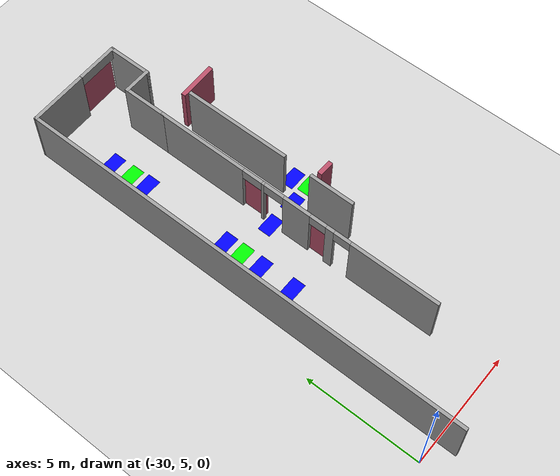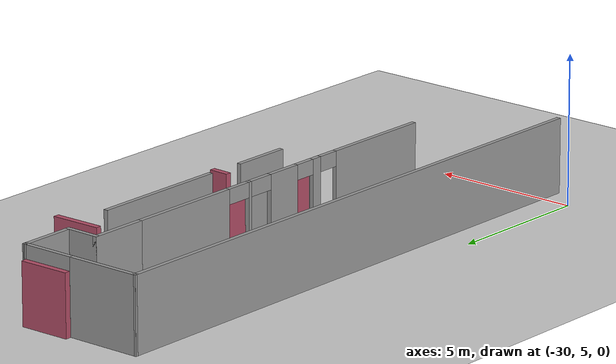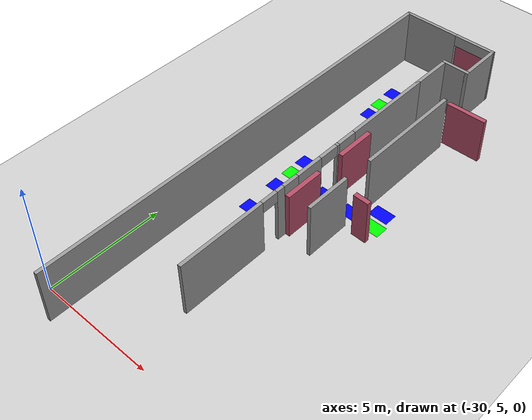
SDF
<sdf version="1.6">
 <world name="default">
  <model name="ground_plane">
   <pose>0 0 0.001 0 -0 0</pose>
   <static>1</static>
   <link name="link">
    <collision name="collision">
     <geometry><plane><normal>0 0 1</normal><size>100 100</size></plane></geometry>
     <surface><friction><ode><mu>100</mu><mu2>50</mu2></ode></friction></surface>
    </collision>
    <visual name="visual">
     <cast_shadows>0</cast_shadows>
     <geometry><plane><normal>0 0 1</normal><size>100 100</size></plane></geometry>
     <material>
      <script><uri>file://media/materials/scripts/gazebo.material</uri><name>Gazebo/Grey</name></script>
     </material>
    </visual>
   </link>
  </model>
  <model name="fin_se1f1.sdf">
   <pose>1.8125 -2.2901 0 0 -0 0</pose>
   <link name="Wall_0">
    <collision name="Wall_0_Collision">
     <geometry><box><size>20 0.15 2.5</size></box></geometry>
     <pose>0 0 1.25 0 -0 0</pose>
    </collision>
    <visual name="Wall_0_Visual">
     <pose>0 0 1.25 0 -0 0</pose>
     <geometry><box><size>20 0.15 2.5</size></box></geometry>
     <material>
      <script><uri>file://media/materials/scripts/gazebo.material</uri><name>Gazebo/Grey</name></script>
      <ambient>1 1 1 1</ambient>
     </material>
     <meta><layer>0</layer></meta>
    </visual>
    <pose>-30.7496 16.4496 0 0 0 -1.5708</pose>
   </link>
   <link name="Wall_114">
    <collision name="Wall_114_Collision">
     <geometry><box><size>2 0.15 2.5</size></box></geometry>
     <pose>0 0 1.25 0 -0 0</pose>
    </collision>
    <visual name="Wall_114_Visual">
     <pose>0 0 1.25 0 -0 0</pose>
     <geometry><box><size>2 0.15 2.5</size></box></geometry>
     <material>
      <script><uri>file://media/materials/scripts/gazebo.material</uri><name>Gazebo/Grey</name></script>
      <ambient>1 1 1 1</ambient>
     </material>
     <meta><layer>0</layer></meta>
    </visual>
    <pose>-26.1645 15.6146 0 0 -0 1.5708</pose>
   </link>
   <link name="Wall_23">
    <collision name="Wall_23_Collision">
     <geometry><box><size>2 0.15 2.5</size></box></geometry>
     <pose>0 0 1.25 0 -0 0</pose>
    </collision>
    <visual name="Wall_23_Visual">
     <pose>0 0 1.25 0 -0 0</pose>
     <geometry><box><size>2 0.15 2.5</size></box></geometry>
     <material>
      <script><uri>file://media/materials/scripts/gazebo.material</uri><name>Gazebo/Grey</name></script>
      <ambient>1 1 1 1</ambient>
     </material>
     <meta><layer>0</layer></meta>
    </visual>
    <pose>-27.5496 23.6496 0 0 -0 1.5708</pose>
   </link>
   <link name="Wall_24">
    <collision name="Wall_24_Collision">
     <geometry><box><size>1.25 0.15 2.5</size></box></geometry>
     <pose>0 0 1.25 0 -0 0</pose>
    </collision>
    <visual name="Wall_24_Visual">
     <pose>0 0 1.25 0 -0 0</pose>
     <geometry><box><size>1.25 0.15 2.5</size></box></geometry>
     <material>
      <script><uri>file://media/materials/scripts/gazebo.material</uri><name>Gazebo/Grey</name></script>
      <ambient>1 1 1 1</ambient>
     </material>
     <meta><layer>0</layer></meta>
    </visual>
    <pose>-26.9996 24.5746 0.001 0 -0 0</pose>
   </link>
   <link name="Wall_25">
    <collision name="Wall_25_Collision">
     <geometry><box><size>2 0.15 2.5</size></box></geometry>
     <pose>0 0 1.25 0 -0 0</pose>
    </collision>
    <visual name="Wall_25_Visual">
     <pose>0 0 1.25 0 -0 0</pose>
     <geometry><box><size>2 0.15 2.5</size></box></geometry>
     <material>
      <script><uri>file://media/materials/scripts/gazebo.material</uri><name>Gazebo/Grey</name></script>
      <ambient>1 1 1 1</ambient>
     </material>
     <meta><layer>0</layer></meta>
    </visual>
    <pose>-26.4496 25.4996 0 0 -0 1.5708</pose>
   </link>
   <link name="Wall_27">
    <pose>-28.5996 26.3996 0 0 0 -3.12996</pose>
    <visual name="Wall_27_Visual_0">
     <pose>-2.20066 0 1.25 0 -0 0</pose>
     <geometry><box><size>0.048973 0.15 2.5</size></box></geometry>
     <material>
      <script><uri>file://media/materials/scripts/gazebo.material</uri><name>Gazebo/Grey</name></script>
      <ambient>1 1 1 1</ambient>
     </material>
     <meta><layer>0</layer></meta>
    </visual>
    <collision name="Wall_27_Collision_0">
     <geometry><box><size>0.048973 0.15 2.5</size></box></geometry>
     <pose>-2.20066 0 1.25 0 -0 0</pose>
    </collision>
    <visual name="Wall_27_Visual_1">
     <pose>0.939694 0 1.25 0 -0 0</pose>
     <geometry><box><size>2.5709 0.15 2.5</size></box></geometry>
     <material>
      <script><uri>file://media/materials/scripts/gazebo.material</uri><name>Gazebo/Grey</name></script>
      <ambient>1 1 1 1</ambient>
     </material>
     <meta><layer>0</layer></meta>
    </visual>
    <collision name="Wall_27_Collision_1">
     <geometry><box><size>2.5709 0.15 2.5</size></box></geometry>
     <pose>0.939694 0 1.25 0 -0 0</pose>
    </collision>
    <visual name="Wall_27_Visual_2">
     <pose>-1.26096 0 2.25 0 -0 0</pose>
     <geometry><box><size>1.83041 0.15 0.5</size></box></geometry>
     <material>
      <script><uri>file://media/materials/scripts/gazebo.material</uri><name>Gazebo/Grey</name></script>
      <ambient>1 1 1 1</ambient>
     </material>
     <meta><layer>0</layer></meta>
    </visual>
    <collision name="Wall_27_Collision_2">
     <geometry><box><size>1.83041 0.15 0.5</size></box></geometry>
     <pose>-1.26096 0 2.25 0 -0 0</pose>
    </collision>
   </link>
   <link name="Wall_29">
    <pose>-27.5496 16.2996 0 0 0 -1.5708</pose>
    <visual name="Wall_29_Visual_0">
     <pose>-4.45394 0 1.25 0 -0 0</pose>
     <geometry><box><size>4.09211 0.15 2.5</size></box></geometry>
     <material>
      <script><uri>file://media/materials/scripts/gazebo.material</uri><name>Gazebo/Grey</name></script>
      <ambient>1 1 1 1</ambient>
     </material>
     <meta><layer>0</layer></meta>
    </visual>
    <collision name="Wall_29_Collision_0">
     <geometry><box><size>4.09211 0.15 2.5</size></box></geometry>
     <pose>-4.45394 0 1.25 0 -0 0</pose>
    </collision>
    <visual name="Wall_29_Visual_1">
     <pose>-1.44499 0 1.25 0 -0 0</pose>
     <geometry><box><size>0.125793 0.15 2.5</size></box></geometry>
     <material>
      <script><uri>file://media/materials/scripts/gazebo.material</uri><name>Gazebo/Grey</name></script>
      <ambient>1 1 1 1</ambient>
     </material>
     <meta><layer>0</layer></meta>
    </visual>
    <collision name="Wall_29_Collision_1">
     <geometry><box><size>0.125793 0.15 2.5</size></box></geometry>
     <pose>-1.44499 0 1.25 0 -0 0</pose>
    </collision>
    <visual name="Wall_29_Visual_2">
     <pose>0.143983 0 1.25 0 -0 0</pose>
     <geometry><box><size>1.25215 0.15 2.5</size></box></geometry>
     <material>
      <script><uri>file://media/materials/scripts/gazebo.material</uri><name>Gazebo/Grey</name></script>
      <ambient>1 1 1 1</ambient>
     </material>
     <meta><layer>0</layer></meta>
    </visual>
    <collision name="Wall_29_Collision_2">
     <geometry><box><size>1.25215 0.15 2.5</size></box></geometry>
     <pose>0.143983 0 1.25 0 -0 0</pose>
    </collision>
    <visual name="Wall_29_Visual_3">
     <pose>1.69273 0 1.25 0 -0 0</pose>
     <geometry><box><size>0.367155 0.15 2.5</size></box></geometry>
     <material>
      <script><uri>file://media/materials/scripts/gazebo.material</uri><name>Gazebo/Grey</name></script>
      <ambient>1 1 1 1</ambient>
     </material>
     <meta><layer>0</layer></meta>
    </visual>
    <collision name="Wall_29_Collision_3">
     <geometry><box><size>0.367155 0.15 2.5</size></box></geometry>
     <pose>1.69273 0 1.25 0 -0 0</pose>
    </collision>
    <visual name="Wall_29_Visual_4">
     <pose>4.5577 0 1.25 0 -0 0</pose>
     <geometry><box><size>3.8846 0.15 2.5</size></box></geometry>
     <material>
      <script><uri>file://media/materials/scripts/gazebo.material</uri><name>Gazebo/Grey</name></script>
      <ambient>1 1 1 1</ambient>
     </material>
     <meta><layer>0</layer></meta>
    </visual>
    <collision name="Wall_29_Collision_4">
     <geometry><box><size>3.8846 0.15 2.5</size></box></geometry>
     <pose>4.5577 0 1.25 0 -0 0</pose>
    </collision>
    <visual name="Wall_29_Visual_5">
     <pose>-1.95789 0 2.25 0 -0 0</pose>
     <geometry><box><size>0.9 0.15 0.5</size></box></geometry>
     <material>
      <script><uri>file://media/materials/scripts/gazebo.material</uri><name>Gazebo/Grey</name></script>
      <ambient>1 1 1 1</ambient>
     </material>
     <meta><layer>0</layer></meta>
    </visual>
    <collision name="Wall_29_Collision_5">
     <geometry><box><size>0.9 0.15 0.5</size></box></geometry>
     <pose>-1.95789 0 2.25 0 -0 0</pose>
    </collision>
    <visual name="Wall_29_Visual_6">
     <pose>-0.932093 0 2.25 0 -0 0</pose>
     <geometry><box><size>0.9 0.15 0.5</size></box></geometry>
     <material>
      <script><uri>file://media/materials/scripts/gazebo.material</uri><name>Gazebo/Grey</name></script>
      <ambient>1 1 1 1</ambient>
     </material>
     <meta><layer>0</layer></meta>
    </visual>
    <collision name="Wall_29_Collision_6">
     <geometry><box><size>0.9 0.15 0.5</size></box></geometry>
     <pose>-0.932093 0 2.25 0 -0 0</pose>
    </collision>
    <visual name="Wall_29_Visual_7">
     <pose>1.1396 0 2.25 0 -0 0</pose>
     <geometry><box><size>0.739091 0.15 0.5</size></box></geometry>
     <material>
      <script><uri>file://media/materials/scripts/gazebo.material</uri><name>Gazebo/Grey</name></script>
      <ambient>1 1 1 1</ambient>
     </material>
     <meta><layer>0</layer></meta>
    </visual>
    <collision name="Wall_29_Collision_7">
     <geometry><box><size>0.739091 0.15 0.5</size></box></geometry>
     <pose>1.1396 0 2.25 0 -0 0</pose>
    </collision>
    <visual name="Wall_29_Visual_8">
     <pose>2.24585 0 2.25 0 -0 0</pose>
     <geometry><box><size>0.739091 0.15 0.5</size></box></geometry>
     <material>
      <script><uri>file://media/materials/scripts/gazebo.material</uri><name>Gazebo/Grey</name></script>
      <ambient>1 1 1 1</ambient>
     </material>
     <meta><layer>0</layer></meta>
    </visual>
    <collision name="Wall_29_Collision_8">
     <geometry><box><size>0.739091 0.15 0.5</size></box></geometry>
     <pose>2.24585 0 2.25 0 -0 0</pose>
    </collision>
   </link>
   <link name="Wall_67">
    <collision name="Wall_67_Collision">
     <geometry><box><size>4.75 0.15 2.5</size></box></geometry>
     <pose>0 0 1.25 0 -0 0</pose>
    </collision>
    <visual name="Wall_67_Visual">
     <pose>0 0 1.25 0 -0 0</pose>
     <geometry><box><size>4.75 0.15 2.5</size></box></geometry>
     <material>
      <script><uri>file://media/materials/scripts/gazebo.material</uri><name>Gazebo/Grey</name></script>
      <ambient>1 1 1 1</ambient>
     </material>
     <meta><layer>0</layer></meta>
    </visual>
    <pose>-26.1152 20.2344 0 0 0 -1.5708</pose>
   </link>
   <static>1</static>
  </model>
  <model name="doorOutside">
   <link name="link">
    <pose>0.155539 -0.366282 0.216958 0 -0 0</pose>
    <inertial>
     <mass>2.13199</mass>
     <inertia>
      <ixx>0.452656</ixx>
      <ixy>0</ixy>
      <ixz>0</ixz>
      <iyy>0.796738</iyy>
      <iyz>0</iyz>
      <izz>0.699414</izz>
     </inertia>
     <pose>0 0 0.001 0 -0 0</pose>
    </inertial>
    <visual name="visual">
     <geometry><box><size>1.71368 0.198843 2.05986</size></box></geometry>
     <material>
      <script><name>Gazebo/Grey</name><uri>file://media/materials/scripts/gazebo.material</uri></script>
      <ambient>0.7 0.3 0.4 1</ambient>
      <diffuse>0.7 0.7 0.7 1</diffuse>
      <specular>0.01 0.01 0.01 1</specular>
      <emissive>0 0 0 1</emissive>
      <shader type="vertex"><normal_map>__default__</normal_map></shader>
      <lighting>0</lighting>
     </material>
     <pose>0 0 0.001 0 -0 0</pose>
    </visual>
    <collision name="collision">
     <pose>0 0 0.001 0 -0 0</pose>
     <geometry><box><size>1.71368 0.198843 2.05986</size></box></geometry>
     <surface>
      <friction>
       <ode><mu>1</mu><mu2>1</mu2><fdir1>0 0 0</fdir1><slip1>0</slip1><slip2>0</slip2></ode>
       <torsional>
        <coefficient>1</coefficient>
        <patch_radius>0</patch_radius>
        <surface_radius>0</surface_radius>
        <use_patch_radius>1</use_patch_radius>
        <ode><slip>0</slip></ode>
       </torsional>
      </friction>
      <bounce><restitution_coefficient>0</restitution_coefficient><threshold>1e+06</threshold></bounce>
      <contact>
       <collide_without_contact>0</collide_without_contact>
       <collide_without_contact_bitmask>1</collide_without_contact_bitmask>
       <collide_bitmask>1</collide_bitmask>
       <ode>
        <soft_cfm>0</soft_cfm>
        <soft_erp>0.2</soft_erp>
        <kp>1e+13</kp>
        <kd>1</kd>
        <max_vel>0.01</max_vel>
        <min_depth>0</min_depth>
       </ode>
       <bullet>
        <split_impulse>1</split_impulse>
        <split_impulse_penetration_threshold>-0.01</split_impulse_penetration_threshold>
        <soft_cfm>0</soft_cfm>
        <soft_erp>0.2</soft_erp>
        <kp>1e+13</kp>
        <kd>1</kd>
       </bullet>
      </contact>
     </surface>
    </collision>
   </link>
   <static>1</static>
   <pose>-25.7598 24.6794 0.812972 0 -0 0.023128</pose>
  </model>
  <model name="doorOutside_clone">
   <link name="link">
    <pose>0.155539 -0.366282 0.216958 0 -0 0</pose>
    <inertial>
     <mass>2.13199</mass>
     <inertia>
      <ixx>0.452656</ixx>
      <ixy>0</ixy>
      <ixz>0</ixz>
      <iyy>0.796738</iyy>
      <iyz>0</iyz>
      <izz>0.699414</izz>
     </inertia>
     <pose>0 0 0.001 0 -0 0</pose>
    </inertial>
    <visual name="visual">
     <geometry><box><size>1.71368 0.198843 2.05986</size></box></geometry>
     <material>
      <script><name>Gazebo/Grey</name><uri>file://media/materials/scripts/gazebo.material</uri></script>
      <ambient>0.7 0.3 0.4 1</ambient>
      <diffuse>0.7 0.7 0.7 1</diffuse>
      <specular>0.01 0.01 0.01 1</specular>
      <emissive>0 0 0 1</emissive>
      <shader type="vertex"><normal_map>__default__</normal_map></shader>
      <lighting>0</lighting>
     </material>
     <pose>0 0 0.001 0 -0 0</pose>
    </visual>
    <collision name="collision">
     <pose>0 0 0.001 0 -0 0</pose>
     <geometry><box><size>1.71368 0.198843 2.05986</size></box></geometry>
     <surface>
      <friction>
       <ode><mu>1</mu><mu2>1</mu2><fdir1>0 0 0</fdir1><slip1>0</slip1><slip2>0</slip2></ode>
       <torsional>
        <coefficient>1</coefficient>
        <patch_radius>0</patch_radius>
        <surface_radius>0</surface_radius>
        <use_patch_radius>1</use_patch_radius>
        <ode><slip>0</slip></ode>
       </torsional>
      </friction>
      <bounce><restitution_coefficient>0</restitution_coefficient><threshold>1e+06</threshold></bounce>
      <contact>
       <collide_without_contact>0</collide_without_contact>
       <collide_without_contact_bitmask>1</collide_without_contact_bitmask>
       <collide_bitmask>1</collide_bitmask>
       <ode>
        <soft_cfm>0</soft_cfm>
        <soft_erp>0.2</soft_erp>
        <kp>1e+13</kp>
        <kd>1</kd>
        <max_vel>0.01</max_vel>
        <min_depth>0</min_depth>
       </ode>
       <bullet>
        <split_impulse>1</split_impulse>
        <split_impulse_penetration_threshold>-0.01</split_impulse_penetration_threshold>
        <soft_cfm>0</soft_cfm>
        <soft_erp>0.2</soft_erp>
        <kp>1e+13</kp>
        <kd>1</kd>
       </bullet>
      </contact>
     </surface>
    </collision>
   </link>
   <static>1</static>
   <pose>-23.6444 21.0534 0.812972 0 -0 0.023097</pose>
  </model>
  <model name="intersection_3">
   <link name="link">
    <pose>0 0 0.001 0 -0 0</pose>
    <inertial>
     <mass>0.0352517</mass>
     <inertia>
      <ixx>0.000997067</ixx>
      <ixy>0</ixy>
      <ixz>0</ixz>
      <iyy>0.00220147</iyy>
      <iyz>0</iyz>
      <izz>0.0031692</izz>
     </inertia>
     <pose>0 0 0.001 0 -0 0</pose>
    </inertial>
    <visual name="visual">
     <geometry><box><size>0.862743 0.578289 1e-06</size></box></geometry>
     <material>
      <script><name>Gazebo/Grey</name><uri>file://media/materials/scripts/gazebo.material</uri></script>
      <ambient>0 0 1 1</ambient>
      <diffuse>0 0 1 1</diffuse>
      <specular>0 0 1 1</specular>
      <emissive>0 0 1 1</emissive>
      <shader type="vertex"><normal_map>__default__</normal_map></shader>
     </material>
     <pose>0 0 0.001 0 -0 0</pose>
    </visual>
    <collision name="collision">
     <pose>0 0 0.001 0 -0 0</pose>
     <geometry><box><size>0.862743 0.578289 0.000477</size></box></geometry>
     <surface>
      <friction>
       <ode><mu>1</mu><mu2>1</mu2><fdir1>0 0 0</fdir1><slip1>0</slip1><slip2>0</slip2></ode>
       <torsional>
        <coefficient>1</coefficient>
        <patch_radius>0</patch_radius>
        <surface_radius>0</surface_radius>
        <use_patch_radius>1</use_patch_radius>
        <ode><slip>0</slip></ode>
       </torsional>
      </friction>
      <bounce><restitution_coefficient>0</restitution_coefficient><threshold>1e+06</threshold></bounce>
      <contact>
       <collide_without_contact>0</collide_without_contact>
       <collide_without_contact_bitmask>1</collide_without_contact_bitmask>
       <collide_bitmask>1</collide_bitmask>
       <ode>
        <soft_cfm>0</soft_cfm>
        <soft_erp>0.2</soft_erp>
        <kp>1e+13</kp>
        <kd>1</kd>
        <max_vel>0.01</max_vel>
        <min_depth>0</min_depth>
       </ode>
       <bullet>
        <split_impulse>1</split_impulse>
        <split_impulse_penetration_threshold>-0.01</split_impulse_penetration_threshold>
        <soft_cfm>0</soft_cfm>
        <soft_erp>0.2</soft_erp>
        <kp>1e+13</kp>
        <kd>1</kd>
       </bullet>
      </contact>
     </surface>
    </collision>
   </link>
   <static>1</static>
   <pose>-23.599 15.7 0 0 -0 0</pose>
  </model>
  <model name="doorOutside_2">
   <link name="link">
    <pose>0.155539 -0.366282 0.216958 0 -0 0</pose>
    <inertial>
     <mass>2.13199</mass>
     <inertia>
      <ixx>0.452656</ixx>
      <ixy>0</ixy>
      <ixz>0</ixz>
      <iyy>0.796738</iyy>
      <iyz>0</iyz>
      <izz>0.699414</izz>
     </inertia>
     <pose>0 0 0.001 0 -0 0</pose>
    </inertial>
    <visual name="visual">
     <geometry><box><size>1.71368 0.198843 2.05986</size></box></geometry>
     <material>
      <script><name>Gazebo/Grey</name><uri>file://media/materials/scripts/gazebo.material</uri></script>
      <ambient>0.7 0.3 0.4 1</ambient>
      <diffuse>0.7 0.7 0.7 1</diffuse>
      <specular>0.01 0.01 0.01 1</specular>
      <emissive>0 0 0 1</emissive>
      <shader type="vertex"><normal_map>__default__</normal_map></shader>
      <lighting>0</lighting>
     </material>
     <pose>0 0 0.001 0 -0 0</pose>
    </visual>
    <collision name="collision">
     <pose>0 0 0.001 0 -0 0</pose>
     <geometry><box><size>1.71368 0.198843 2.05986</size></box></geometry>
     <surface>
      <friction>
       <ode><mu>1</mu><mu2>1</mu2><fdir1>0 0 0</fdir1><slip1>0</slip1><slip2>0</slip2></ode>
       <torsional>
        <coefficient>1</coefficient>
        <patch_radius>0</patch_radius>
        <surface_radius>0</surface_radius>
        <use_patch_radius>1</use_patch_radius>
        <ode><slip>0</slip></ode>
       </torsional>
      </friction>
      <bounce><restitution_coefficient>0</restitution_coefficient><threshold>1e+06</threshold></bounce>
      <contact>
       <collide_without_contact>0</collide_without_contact>
       <collide_without_contact_bitmask>1</collide_without_contact_bitmask>
       <collide_bitmask>1</collide_bitmask>
       <ode>
        <soft_cfm>0</soft_cfm>
        <soft_erp>0.2</soft_erp>
        <kp>1e+13</kp>
        <kd>1</kd>
        <max_vel>0.01</max_vel>
        <min_depth>0</min_depth>
       </ode>
       <bullet>
        <split_impulse>1</split_impulse>
        <split_impulse_penetration_threshold>-0.01</split_impulse_penetration_threshold>
        <soft_cfm>0</soft_cfm>
        <soft_erp>0.2</soft_erp>
        <kp>1e+13</kp>
        <kd>1</kd>
       </bullet>
      </contact>
     </surface>
    </collision>
   </link>
   <static>0</static>
   <pose>-25.9288 16.1601 0.811972 0 -0 1.5708</pose>
  </model>
  <model name="doorOutside_2_clone">
   <link name="link">
    <pose>0.155539 -0.366282 0.216958 0 -0 0</pose>
    <inertial>
     <mass>2.13199</mass>
     <inertia>
      <ixx>0.452656</ixx>
      <ixy>0</ixy>
      <ixz>0</ixz>
      <iyy>0.796738</iyy>
      <iyz>0</iyz>
      <izz>0.699414</izz>
     </inertia>
     <pose>0 0 0.001 0 -0 0</pose>
    </inertial>
    <visual name="visual">
     <geometry><box><size>1.71368 0.198843 2.05986</size></box></geometry>
     <material>
      <script><name>Gazebo/Grey</name><uri>file://media/materials/scripts/gazebo.material</uri></script>
      <ambient>0.7 0.3 0.4 1</ambient>
      <diffuse>0.7 0.7 0.7 1</diffuse>
      <specular>0.01 0.01 0.01 1</specular>
      <emissive>0 0 0 1</emissive>
      <shader type="vertex"><normal_map>__default__</normal_map></shader>
      <lighting>0</lighting>
     </material>
     <pose>0 0 0.001 0 -0 0</pose>
    </visual>
    <collision name="collision">
     <pose>0 0 0.001 0 -0 0</pose>
     <geometry><box><size>1.71368 0.198843 2.05986</size></box></geometry>
     <surface>
      <friction>
       <ode><mu>1</mu><mu2>1</mu2><fdir1>0 0 0</fdir1><slip1>0</slip1><slip2>0</slip2></ode>
       <torsional>
        <coefficient>1</coefficient>
        <patch_radius>0</patch_radius>
        <surface_radius>0</surface_radius>
        <use_patch_radius>1</use_patch_radius>
        <ode><slip>0</slip></ode>
       </torsional>
      </friction>
      <bounce><restitution_coefficient>0</restitution_coefficient><threshold>1e+06</threshold></bounce>
      <contact>
       <collide_without_contact>0</collide_without_contact>
       <collide_without_contact_bitmask>1</collide_without_contact_bitmask>
       <collide_bitmask>1</collide_bitmask>
       <ode>
        <soft_cfm>0</soft_cfm>
        <soft_erp>0.2</soft_erp>
        <kp>1e+13</kp>
        <kd>1</kd>
        <max_vel>0.01</max_vel>
        <min_depth>0</min_depth>
       </ode>
       <bullet>
        <split_impulse>1</split_impulse>
        <split_impulse_penetration_threshold>-0.01</split_impulse_penetration_threshold>
        <soft_cfm>0</soft_cfm>
        <soft_erp>0.2</soft_erp>
        <kp>1e+13</kp>
        <kd>1</kd>
       </bullet>
      </contact>
     </surface>
    </collision>
   </link>
   <static>0</static>
   <pose>-25.9267 13.2237 0.811972 0 -0 1.56757</pose>
  </model>
  <model name="corridor">
   <link name="link">
    <pose>0 0 0.001 0 -0 0</pose>
    <inertial>
     <mass>0.0352517</mass>
     <inertia>
      <ixx>0.00099707</ixx>
      <ixy>0</ixy>
      <ixz>0</ixz>
      <iyy>0.00220147</iyy>
      <iyz>0</iyz>
      <izz>0.0031692</izz>
     </inertia>
     <pose>0 0 0.001 0 -0 0</pose>
    </inertial>
    <visual name="visual">
     <geometry><box><size>0.862743 0.578289 1e-06</size></box></geometry>
     <material>
      <script><name>Gazebo/Grey</name><uri>file://media/materials/scripts/gazebo.material</uri></script>
      <ambient>0 1 0 1</ambient>
      <diffuse>0 1 0 1</diffuse>
      <specular>0 1 0 1</specular>
      <emissive>0 1 0 1</emissive>
      <shader type="vertex"><normal_map>__default__</normal_map></shader>
     </material>
     <pose>0 0 0.001 0 -0 0</pose>
    </visual>
    <collision name="collision">
     <pose>0 0 0.001 0 -0 0</pose>
     <geometry><box><size>0.862743 0.578289 0.000477</size></box></geometry>
     <surface>
      <friction>
       <ode><mu>1</mu><mu2>1</mu2><fdir1>0 0 0</fdir1><slip1>0</slip1><slip2>0</slip2></ode>
       <torsional>
        <coefficient>1</coefficient>
        <patch_radius>0</patch_radius>
        <surface_radius>0</surface_radius>
        <use_patch_radius>1</use_patch_radius>
        <ode><slip>0</slip></ode>
       </torsional>
      </friction>
      <bounce><restitution_coefficient>0</restitution_coefficient><threshold>1e+06</threshold></bounce>
      <contact>
       <collide_without_contact>0</collide_without_contact>
       <collide_without_contact_bitmask>1</collide_without_contact_bitmask>
       <collide_bitmask>1</collide_bitmask>
       <ode>
        <soft_cfm>0</soft_cfm>
        <soft_erp>0.2</soft_erp>
        <kp>1e+13</kp>
        <kd>1</kd>
        <max_vel>0.01</max_vel>
        <min_depth>0</min_depth>
       </ode>
       <bullet>
        <split_impulse>1</split_impulse>
        <split_impulse_penetration_threshold>-0.01</split_impulse_penetration_threshold>
        <soft_cfm>0</soft_cfm>
        <soft_erp>0.2</soft_erp>
        <kp>1e+13</kp>
        <kd>1</kd>
       </bullet>
      </contact>
     </surface>
    </collision>
   </link>
   <static>1</static>
   <pose>-27.5631 20.7542 0 0 -0 0</pose>
  </model>
  <model name="corridor_0">
   <link name="link">
    <pose>0 0 0.001 0 -0 0</pose>
    <inertial>
     <mass>0.0352517</mass>
     <inertia>
      <ixx>0.00099707</ixx>
      <ixy>0</ixy>
      <ixz>0</ixz>
      <iyy>0.00220147</iyy>
      <iyz>0</iyz>
      <izz>0.0031692</izz>
     </inertia>
     <pose>0 0 0.001 0 -0 0</pose>
    </inertial>
    <visual name="visual">
     <geometry><box><size>0.862743 0.578289 1e-06</size></box></geometry>
     <material>
      <script><name>Gazebo/Grey</name><uri>file://media/materials/scripts/gazebo.material</uri></script>
      <ambient>0 1 0 1</ambient>
      <diffuse>0 1 0 1</diffuse>
      <specular>0 1 0 1</specular>
      <emissive>0 1 0 1</emissive>
      <shader type="vertex"><normal_map>__default__</normal_map></shader>
     </material>
     <pose>0 0 0.001 0 -0 0</pose>
    </visual>
    <collision name="collision">
     <pose>0 0 0.001 0 -0 0</pose>
     <geometry><box><size>0.862743 0.578289 0.000477</size></box></geometry>
     <surface>
      <friction>
       <ode><mu>1</mu><mu2>1</mu2><fdir1>0 0 0</fdir1><slip1>0</slip1><slip2>0</slip2></ode>
       <torsional>
        <coefficient>1</coefficient>
        <patch_radius>0</patch_radius>
        <surface_radius>0</surface_radius>
        <use_patch_radius>1</use_patch_radius>
        <ode><slip>0</slip></ode>
       </torsional>
      </friction>
      <bounce><restitution_coefficient>0</restitution_coefficient><threshold>1e+06</threshold></bounce>
      <contact>
       <collide_without_contact>0</collide_without_contact>
       <collide_without_contact_bitmask>1</collide_without_contact_bitmask>
       <collide_bitmask>1</collide_bitmask>
       <ode>
        <soft_cfm>0</soft_cfm>
        <soft_erp>0.2</soft_erp>
        <kp>1e+13</kp>
        <kd>1</kd>
        <max_vel>0.01</max_vel>
        <min_depth>0</min_depth>
       </ode>
       <bullet>
        <split_impulse>1</split_impulse>
        <split_impulse_penetration_threshold>-0.01</split_impulse_penetration_threshold>
        <soft_cfm>0</soft_cfm>
        <soft_erp>0.2</soft_erp>
        <kp>1e+13</kp>
        <kd>1</kd>
       </bullet>
      </contact>
     </surface>
    </collision>
   </link>
   <static>1</static>
   <pose>-27.5347 15.0677 0 0 -0 0</pose>
  </model>
  <model name="corridor_22">
   <link name="link">
    <pose>0 0 0.001 0 -0 0</pose>
    <inertial>
     <mass>0.0352517</mass>
     <inertia>
      <ixx>0.00099707</ixx>
      <ixy>0</ixy>
      <ixz>0</ixz>
      <iyy>0.00220147</iyy>
      <iyz>0</iyz>
      <izz>0.0031692</izz>
     </inertia>
     <pose>0 0 0.001 0 -0 0</pose>
    </inertial>
    <visual name="visual">
     <geometry><box><size>0.862743 0.578289 1e-06</size></box></geometry>
     <material>
      <script><name>Gazebo/Grey</name><uri>file://media/materials/scripts/gazebo.material</uri></script>
      <ambient>0 1 0 1</ambient>
      <diffuse>0 1 0 1</diffuse>
      <specular>0 1 0 1</specular>
      <emissive>0 1 0 1</emissive>
      <shader type="vertex"><normal_map>__default__</normal_map></shader>
     </material>
     <pose>0 0 0.001 0 -0 0</pose>
    </visual>
    <collision name="collision">
     <pose>0 0 0.001 0 -0 0</pose>
     <geometry><box><size>0.862743 0.578289 0.000477</size></box></geometry>
     <surface>
      <friction>
       <ode><mu>1</mu><mu2>1</mu2><fdir1>0 0 0</fdir1><slip1>0</slip1><slip2>0</slip2></ode>
       <torsional>
        <coefficient>1</coefficient>
        <patch_radius>0</patch_radius>
        <surface_radius>0</surface_radius>
        <use_patch_radius>1</use_patch_radius>
        <ode><slip>0</slip></ode>
       </torsional>
      </friction>
      <bounce><restitution_coefficient>0</restitution_coefficient><threshold>1e+06</threshold></bounce>
      <contact>
       <collide_without_contact>0</collide_without_contact>
       <collide_without_contact_bitmask>1</collide_without_contact_bitmask>
       <collide_bitmask>1</collide_bitmask>
       <ode>
        <soft_cfm>0</soft_cfm>
        <soft_erp>0.2</soft_erp>
        <kp>1e+13</kp>
        <kd>1</kd>
        <max_vel>0.01</max_vel>
        <min_depth>0</min_depth>
       </ode>
       <bullet>
        <split_impulse>1</split_impulse>
        <split_impulse_penetration_threshold>-0.01</split_impulse_penetration_threshold>
        <soft_cfm>0</soft_cfm>
        <soft_erp>0.2</soft_erp>
        <kp>1e+13</kp>
        <kd>1</kd>
       </bullet>
      </contact>
     </surface>
    </collision>
   </link>
   <static>1</static>
   <pose>-23.4504 14.9709 0 0 -0 0</pose>
  </model>
  <model name="doorInside_14">
   <link name="link">
    <pose>0.712274 -0.220649 0.216958 0 -0 0</pose>
    <inertial>
     <mass>0.840612</mass>
     <inertia>
      <ixx>0.178476</ixx>
      <ixy>0</ixy>
      <ixz>0</ixz>
      <iyy>0.140406</iyy>
      <iyz>0</iyz>
      <izz>0.102032</izz>
     </inertia>
     <pose>0 0 0.001 0 -0 0</pose>
    </inertial>
    <visual name="visual">
     <geometry><box><size>0.675678 0.198843 2.05986</size></box></geometry>
     <material>
      <script><name>Gazebo/Grey</name><uri>file://media/materials/scripts/gazebo.material</uri></script>
      <ambient>0.7 0.3 0.4 1</ambient>
      <diffuse>0.7 0.7 0.7 1</diffuse>
      <specular>0.01 0.01 0.01 1</specular>
      <emissive>1 0 0 1</emissive>
      <shader type="vertex"><normal_map>__default__</normal_map></shader>
      <lighting>0</lighting>
     </material>
     <pose>0 0 0.001 0 -0 0</pose>
    </visual>
    <collision name="collision">
     <pose>0 0 0.001 0 -0 0</pose>
     <geometry><box><size>0.675678 0.198843 2.05986</size></box></geometry>
     <surface>
      <friction>
       <ode><mu>1</mu><mu2>1</mu2><fdir1>0 0 0</fdir1><slip1>0</slip1><slip2>0</slip2></ode>
       <torsional>
        <coefficient>1</coefficient>
        <patch_radius>0</patch_radius>
        <surface_radius>0</surface_radius>
        <use_patch_radius>1</use_patch_radius>
        <ode><slip>0</slip></ode>
       </torsional>
      </friction>
      <bounce><restitution_coefficient>0</restitution_coefficient><threshold>1e+06</threshold></bounce>
      <contact>
       <collide_without_contact>0</collide_without_contact>
       <collide_without_contact_bitmask>1</collide_without_contact_bitmask>
       <collide_bitmask>1</collide_bitmask>
       <ode>
        <soft_cfm>0</soft_cfm>
        <soft_erp>0.2</soft_erp>
        <kp>1e+13</kp>
        <kd>1</kd>
        <max_vel>0.01</max_vel>
        <min_depth>0</min_depth>
       </ode>
       <bullet>
        <split_impulse>1</split_impulse>
        <split_impulse_penetration_threshold>-0.01</split_impulse_penetration_threshold>
        <soft_cfm>0</soft_cfm>
        <soft_erp>0.2</soft_erp>
        <kp>1e+13</kp>
        <kd>1</kd>
       </bullet>
      </contact>
     </surface>
    </collision>
   </link>
   <static>0</static>
   <pose>-24.2309 14.4945 0.814008 0.006412 -0 -0.021441</pose>
  </model>
  <model name="intersection_28">
   <link name="link">
    <pose>0 0 0.001 0 -0 0</pose>
    <inertial>
     <mass>0.0352517</mass>
     <inertia>
      <ixx>0.000997067</ixx>
      <ixy>0</ixy>
      <ixz>0</ixz>
      <iyy>0.00220147</iyy>
      <iyz>0</iyz>
      <izz>0.0031692</izz>
     </inertia>
     <pose>0 0 0.001 0 -0 0</pose>
    </inertial>
    <visual name="visual">
     <geometry><box><size>0.862743 0.578289 1e-06</size></box></geometry>
     <material>
      <script><name>Gazebo/Grey</name><uri>file://media/materials/scripts/gazebo.material</uri></script>
      <ambient>0 0 1 1</ambient>
      <diffuse>0 0 1 1</diffuse>
      <specular>0 0 1 1</specular>
      <emissive>0 0 1 1</emissive>
      <shader type="vertex"><normal_map>__default__</normal_map></shader>
     </material>
     <pose>0 0 0.001 0 -0 0</pose>
    </visual>
    <collision name="collision">
     <pose>0 0 0.001 0 -0 0</pose>
     <geometry><box><size>0.862743 0.578289 0.000477</size></box></geometry>
     <surface>
      <friction>
       <ode><mu>1</mu><mu2>1</mu2><fdir1>0 0 0</fdir1><slip1>0</slip1><slip2>0</slip2></ode>
       <torsional>
        <coefficient>1</coefficient>
        <patch_radius>0</patch_radius>
        <surface_radius>0</surface_radius>
        <use_patch_radius>1</use_patch_radius>
        <ode><slip>0</slip></ode>
       </torsional>
      </friction>
      <bounce><restitution_coefficient>0</restitution_coefficient><threshold>1e+06</threshold></bounce>
      <contact>
       <collide_without_contact>0</collide_without_contact>
       <collide_without_contact_bitmask>1</collide_without_contact_bitmask>
       <collide_bitmask>1</collide_bitmask>
       <ode>
        <soft_cfm>0</soft_cfm>
        <soft_erp>0.2</soft_erp>
        <kp>1e+13</kp>
        <kd>1</kd>
        <max_vel>0.01</max_vel>
        <min_depth>0</min_depth>
       </ode>
       <bullet>
        <split_impulse>1</split_impulse>
        <split_impulse_penetration_threshold>-0.01</split_impulse_penetration_threshold>
        <soft_cfm>0</soft_cfm>
        <soft_erp>0.2</soft_erp>
        <kp>1e+13</kp>
        <kd>1</kd>
       </bullet>
      </contact>
     </surface>
    </collision>
   </link>
   <static>1</static>
   <pose>-27.4942 12.6293 0 0 -0 0</pose>
  </model>
  <model name="intersection_29">
   <link name="link">
    <pose>0 0 0.001 0 -0 0</pose>
    <inertial>
     <mass>0.0352517</mass>
     <inertia>
      <ixx>0.000997067</ixx>
      <ixy>0</ixy>
      <ixz>0</ixz>
      <iyy>0.00220147</iyy>
      <iyz>0</iyz>
      <izz>0.0031692</izz>
     </inertia>
     <pose>0 0 0.001 0 -0 0</pose>
    </inertial>
    <visual name="visual">
     <geometry><box><size>0.862743 0.578289 1e-06</size></box></geometry>
     <material>
      <script><name>Gazebo/Grey</name><uri>file://media/materials/scripts/gazebo.material</uri></script>
      <ambient>0 0 1 1</ambient>
      <diffuse>0 0 1 1</diffuse>
      <specular>0 0 1 1</specular>
      <emissive>0 0 1 1</emissive>
      <shader type="vertex"><normal_map>__default__</normal_map></shader>
     </material>
     <pose>0 0 0.001 0 -0 0</pose>
    </visual>
    <collision name="collision">
     <pose>0 0 0.001 0 -0 0</pose>
     <geometry><box><size>0.862743 0.578289 0.000477</size></box></geometry>
     <surface>
      <friction>
       <ode><mu>1</mu><mu2>1</mu2><fdir1>0 0 0</fdir1><slip1>0</slip1><slip2>0</slip2></ode>
       <torsional>
        <coefficient>1</coefficient>
        <patch_radius>0</patch_radius>
        <surface_radius>0</surface_radius>
        <use_patch_radius>1</use_patch_radius>
        <ode><slip>0</slip></ode>
       </torsional>
      </friction>
      <bounce><restitution_coefficient>0</restitution_coefficient><threshold>1e+06</threshold></bounce>
      <contact>
       <collide_without_contact>0</collide_without_contact>
       <collide_without_contact_bitmask>1</collide_without_contact_bitmask>
       <collide_bitmask>1</collide_bitmask>
       <ode>
        <soft_cfm>0</soft_cfm>
        <soft_erp>0.2</soft_erp>
        <kp>1e+13</kp>
        <kd>1</kd>
        <max_vel>0.01</max_vel>
        <min_depth>0</min_depth>
       </ode>
       <bullet>
        <split_impulse>1</split_impulse>
        <split_impulse_penetration_threshold>-0.01</split_impulse_penetration_threshold>
        <soft_cfm>0</soft_cfm>
        <soft_erp>0.2</soft_erp>
        <kp>1e+13</kp>
        <kd>1</kd>
       </bullet>
      </contact>
     </surface>
    </collision>
   </link>
   <static>1</static>
   <pose>-27.5248 14.1529 0 0 -0 0</pose>
  </model>
  <model name="intersection_31">
   <link name="link">
    <pose>0 0 0.001 0 -0 0</pose>
    <inertial>
     <mass>0.0352517</mass>
     <inertia>
      <ixx>0.000997067</ixx>
      <ixy>0</ixy>
      <ixz>0</ixz>
      <iyy>0.00220147</iyy>
      <iyz>0</iyz>
      <izz>0.0031692</izz>
     </inertia>
     <pose>0 0 0.001 0 -0 0</pose>
    </inertial>
    <visual name="visual">
     <geometry><box><size>0.862743 0.578289 1e-06</size></box></geometry>
     <material>
      <script><name>Gazebo/Grey</name><uri>file://media/materials/scripts/gazebo.material</uri></script>
      <ambient>0 0 1 1</ambient>
      <diffuse>0 0 1 1</diffuse>
      <specular>0 0 1 1</specular>
      <emissive>0 0 1 1</emissive>
      <shader type="vertex"><normal_map>__default__</normal_map></shader>
     </material>
     <pose>0 0 0.001 0 -0 0</pose>
    </visual>
    <collision name="collision">
     <pose>0 0 0.001 0 -0 0</pose>
     <geometry><box><size>0.862743 0.578289 0.000477</size></box></geometry>
     <surface>
      <friction>
       <ode><mu>1</mu><mu2>1</mu2><fdir1>0 0 0</fdir1><slip1>0</slip1><slip2>0</slip2></ode>
       <torsional>
        <coefficient>1</coefficient>
        <patch_radius>0</patch_radius>
        <surface_radius>0</surface_radius>
        <use_patch_radius>1</use_patch_radius>
        <ode><slip>0</slip></ode>
       </torsional>
      </friction>
      <bounce><restitution_coefficient>0</restitution_coefficient><threshold>1e+06</threshold></bounce>
      <contact>
       <collide_without_contact>0</collide_without_contact>
       <collide_without_contact_bitmask>1</collide_without_contact_bitmask>
       <collide_bitmask>1</collide_bitmask>
       <ode>
        <soft_cfm>0</soft_cfm>
        <soft_erp>0.2</soft_erp>
        <kp>1e+13</kp>
        <kd>1</kd>
        <max_vel>0.01</max_vel>
        <min_depth>0</min_depth>
       </ode>
       <bullet>
        <split_impulse>1</split_impulse>
        <split_impulse_penetration_threshold>-0.01</split_impulse_penetration_threshold>
        <soft_cfm>0</soft_cfm>
        <soft_erp>0.2</soft_erp>
        <kp>1e+13</kp>
        <kd>1</kd>
       </bullet>
      </contact>
     </surface>
    </collision>
   </link>
   <static>1</static>
   <pose>-27.5499 15.8818 0 0 -0 0</pose>
  </model>
  <model name="intersection_32">
   <link name="link">
    <pose>0 0 0.001 0 -0 0</pose>
    <inertial>
     <mass>0.0352517</mass>
     <inertia>
      <ixx>0.000997067</ixx>
      <ixy>0</ixy>
      <ixz>0</ixz>
      <iyy>0.00220147</iyy>
      <iyz>0</iyz>
      <izz>0.0031692</izz>
     </inertia>
     <pose>0 0 0.001 0 -0 0</pose>
    </inertial>
    <visual name="visual">
     <geometry><box><size>0.862743 0.578289 1e-06</size></box></geometry>
     <material>
      <script><name>Gazebo/Grey</name><uri>file://media/materials/scripts/gazebo.material</uri></script>
      <ambient>0 0 1 1</ambient>
      <diffuse>0 0 1 1</diffuse>
      <specular>0 0 1 1</specular>
      <emissive>0 0 1 1</emissive>
      <shader type="vertex"><normal_map>__default__</normal_map></shader>
     </material>
     <pose>0 0 0.001 0 -0 0</pose>
    </visual>
    <collision name="collision">
     <pose>0 0 0.001 0 -0 0</pose>
     <geometry><box><size>0.862743 0.578289 0.000477</size></box></geometry>
     <surface>
      <friction>
       <ode><mu>1</mu><mu2>1</mu2><fdir1>0 0 0</fdir1><slip1>0</slip1><slip2>0</slip2></ode>
       <torsional>
        <coefficient>1</coefficient>
        <patch_radius>0</patch_radius>
        <surface_radius>0</surface_radius>
        <use_patch_radius>1</use_patch_radius>
        <ode><slip>0</slip></ode>
       </torsional>
      </friction>
      <bounce><restitution_coefficient>0</restitution_coefficient><threshold>1e+06</threshold></bounce>
      <contact>
       <collide_without_contact>0</collide_without_contact>
       <collide_without_contact_bitmask>1</collide_without_contact_bitmask>
       <collide_bitmask>1</collide_bitmask>
       <ode>
        <soft_cfm>0</soft_cfm>
        <soft_erp>0.2</soft_erp>
        <kp>1e+13</kp>
        <kd>1</kd>
        <max_vel>0.01</max_vel>
        <min_depth>0</min_depth>
       </ode>
       <bullet>
        <split_impulse>1</split_impulse>
        <split_impulse_penetration_threshold>-0.01</split_impulse_penetration_threshold>
        <soft_cfm>0</soft_cfm>
        <soft_erp>0.2</soft_erp>
        <kp>1e+13</kp>
        <kd>1</kd>
       </bullet>
      </contact>
     </surface>
    </collision>
   </link>
   <static>1</static>
   <pose>-27.5069 19.9595 0 0 -0 0</pose>
  </model>
  <model name="intersection_33">
   <link name="link">
    <pose>0 0 0.001 0 -0 0</pose>
    <inertial>
     <mass>0.0352517</mass>
     <inertia>
      <ixx>0.000997067</ixx>
      <ixy>0</ixy>
      <ixz>0</ixz>
      <iyy>0.00220147</iyy>
      <iyz>0</iyz>
      <izz>0.0031692</izz>
     </inertia>
     <pose>0 0 0.001 0 -0 0</pose>
    </inertial>
    <visual name="visual">
     <geometry><box><size>0.862743 0.578289 1e-06</size></box></geometry>
     <material>
      <script><name>Gazebo/Grey</name><uri>file://media/materials/scripts/gazebo.material</uri></script>
      <ambient>0 0 1 1</ambient>
      <diffuse>0 0 1 1</diffuse>
      <specular>0 0 1 1</specular>
      <emissive>0 0 1 1</emissive>
      <shader type="vertex"><normal_map>__default__</normal_map></shader>
     </material>
     <pose>0 0 0.001 0 -0 0</pose>
    </visual>
    <collision name="collision">
     <pose>0 0 0.001 0 -0 0</pose>
     <geometry><box><size>0.862743 0.578289 0.000477</size></box></geometry>
     <surface>
      <friction>
       <ode><mu>1</mu><mu2>1</mu2><fdir1>0 0 0</fdir1><slip1>0</slip1><slip2>0</slip2></ode>
       <torsional>
        <coefficient>1</coefficient>
        <patch_radius>0</patch_radius>
        <surface_radius>0</surface_radius>
        <use_patch_radius>1</use_patch_radius>
        <ode><slip>0</slip></ode>
       </torsional>
      </friction>
      <bounce><restitution_coefficient>0</restitution_coefficient><threshold>1e+06</threshold></bounce>
      <contact>
       <collide_without_contact>0</collide_without_contact>
       <collide_without_contact_bitmask>1</collide_without_contact_bitmask>
       <collide_bitmask>1</collide_bitmask>
       <ode>
        <soft_cfm>0</soft_cfm>
        <soft_erp>0.2</soft_erp>
        <kp>1e+13</kp>
        <kd>1</kd>
        <max_vel>0.01</max_vel>
        <min_depth>0</min_depth>
       </ode>
       <bullet>
        <split_impulse>1</split_impulse>
        <split_impulse_penetration_threshold>-0.01</split_impulse_penetration_threshold>
        <soft_cfm>0</soft_cfm>
        <soft_erp>0.2</soft_erp>
        <kp>1e+13</kp>
        <kd>1</kd>
       </bullet>
      </contact>
     </surface>
    </collision>
   </link>
   <static>1</static>
   <pose>-27.6015 21.698 0 0 -0 0</pose>
  </model>
  <model name="intersection_37">
   <link name="link">
    <pose>0 0 0.001 0 -0 0</pose>
    <inertial>
     <mass>0.0352517</mass>
     <inertia>
      <ixx>0.000997067</ixx>
      <ixy>0</ixy>
      <ixz>0</ixz>
      <iyy>0.00220147</iyy>
      <iyz>0</iyz>
      <izz>0.0031692</izz>
     </inertia>
     <pose>0 0 0.001 0 -0 0</pose>
    </inertial>
    <visual name="visual">
     <geometry><box><size>0.862743 0.578289 1e-06</size></box></geometry>
     <material>
      <script><name>Gazebo/Grey</name><uri>file://media/materials/scripts/gazebo.material</uri></script>
      <ambient>0 0 1 1</ambient>
      <diffuse>0 0 1 1</diffuse>
      <specular>0 0 1 1</specular>
      <emissive>0 0 1 1</emissive>
      <shader type="vertex"><normal_map>__default__</normal_map></shader>
     </material>
     <pose>0 0 0.001 0 -0 0</pose>
    </visual>
    <collision name="collision">
     <pose>0 0 0.001 0 -0 0</pose>
     <geometry><box><size>0.862743 0.578289 0.000477</size></box></geometry>
     <surface>
      <friction>
       <ode><mu>1</mu><mu2>1</mu2><fdir1>0 0 0</fdir1><slip1>0</slip1><slip2>0</slip2></ode>
       <torsional>
        <coefficient>1</coefficient>
        <patch_radius>0</patch_radius>
        <surface_radius>0</surface_radius>
        <use_patch_radius>1</use_patch_radius>
        <ode><slip>0</slip></ode>
       </torsional>
      </friction>
      <bounce><restitution_coefficient>0</restitution_coefficient><threshold>1e+06</threshold></bounce>
      <contact>
       <collide_without_contact>0</collide_without_contact>
       <collide_without_contact_bitmask>1</collide_without_contact_bitmask>
       <collide_bitmask>1</collide_bitmask>
       <ode>
        <soft_cfm>0</soft_cfm>
        <soft_erp>0.2</soft_erp>
        <kp>1e+13</kp>
        <kd>1</kd>
        <max_vel>0.01</max_vel>
        <min_depth>0</min_depth>
       </ode>
       <bullet>
        <split_impulse>1</split_impulse>
        <split_impulse_penetration_threshold>-0.01</split_impulse_penetration_threshold>
        <soft_cfm>0</soft_cfm>
        <soft_erp>0.2</soft_erp>
        <kp>1e+13</kp>
        <kd>1</kd>
       </bullet>
      </contact>
     </surface>
    </collision>
   </link>
   <static>1</static>
   <pose>-25.8361 15.0248 0 0 -0 0</pose>
  </model>
  <model name="intersection_38">
   <link name="link">
    <pose>0 0 0.001 0 -0 0</pose>
    <inertial>
     <mass>0.0352517</mass>
     <inertia>
      <ixx>0.000997067</ixx>
      <ixy>0</ixy>
      <ixz>0</ixz>
      <iyy>0.00220147</iyy>
      <iyz>0</iyz>
      <izz>0.0031692</izz>
     </inertia>
     <pose>0 0 0.001 0 -0 0</pose>
    </inertial>
    <visual name="visual">
     <geometry><box><size>0.862743 0.578289 1e-06</size></box></geometry>
     <material>
      <script><name>Gazebo/Grey</name><uri>file://media/materials/scripts/gazebo.material</uri></script>
      <ambient>0 0 1 1</ambient>
      <diffuse>0 0 1 1</diffuse>
      <specular>0 0 1 1</specular>
      <emissive>0 0 1 1</emissive>
      <shader type="vertex"><normal_map>__default__</normal_map></shader>
     </material>
     <pose>0 0 0.001 0 -0 0</pose>
    </visual>
    <collision name="collision">
     <pose>0 0 0.001 0 -0 0</pose>
     <geometry><box><size>0.862743 0.578289 0.000477</size></box></geometry>
     <surface>
      <friction>
       <ode><mu>1</mu><mu2>1</mu2><fdir1>0 0 0</fdir1><slip1>0</slip1><slip2>0</slip2></ode>
       <torsional>
        <coefficient>1</coefficient>
        <patch_radius>0</patch_radius>
        <surface_radius>0</surface_radius>
        <use_patch_radius>1</use_patch_radius>
        <ode><slip>0</slip></ode>
       </torsional>
      </friction>
      <bounce><restitution_coefficient>0</restitution_coefficient><threshold>1e+06</threshold></bounce>
      <contact>
       <collide_without_contact>0</collide_without_contact>
       <collide_without_contact_bitmask>1</collide_without_contact_bitmask>
       <collide_bitmask>1</collide_bitmask>
       <ode>
        <soft_cfm>0</soft_cfm>
        <soft_erp>0.2</soft_erp>
        <kp>1e+13</kp>
        <kd>1</kd>
        <max_vel>0.01</max_vel>
        <min_depth>0</min_depth>
       </ode>
       <bullet>
        <split_impulse>1</split_impulse>
        <split_impulse_penetration_threshold>-0.01</split_impulse_penetration_threshold>
        <soft_cfm>0</soft_cfm>
        <soft_erp>0.2</soft_erp>
        <kp>1e+13</kp>
        <kd>1</kd>
       </bullet>
      </contact>
     </surface>
    </collision>
   </link>
   <static>1</static>
   <pose>-24.5196 14.9839 0 0 -0 0</pose>
  </model>
 </world>
</sdf>
